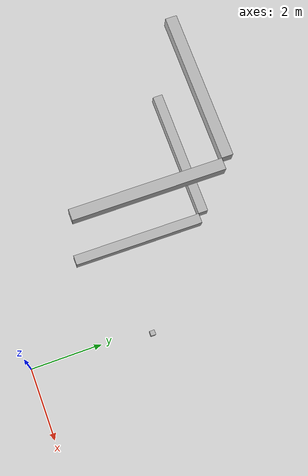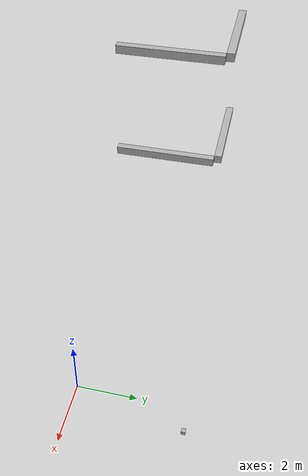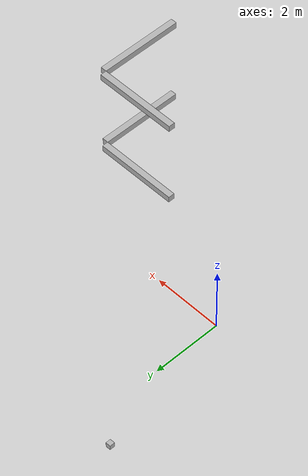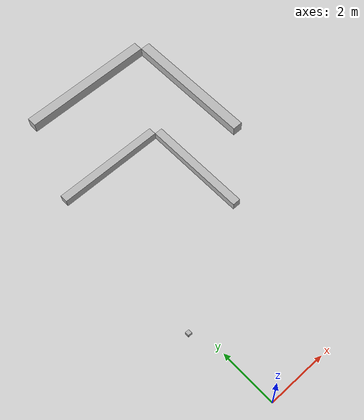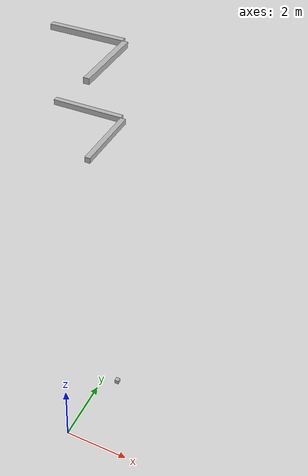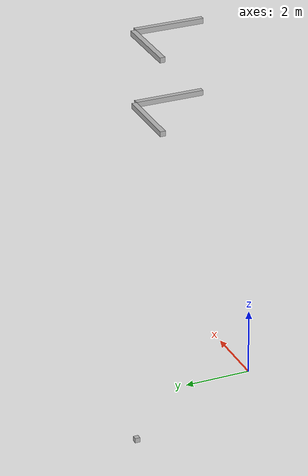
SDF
<sdf version="1.7">
 <world name="default">
  <model name="orthogonal_747_2.000.15_TS">
   <static>1</static>
   <link name="u_link_0_4_3">
    <inertial>
     <mass>1</mass>
     <inertia>
      <ixx>0.166667</ixx>
      <ixy>0</ixy>
      <ixz>0</ixz>
      <iyy>0.166667</iyy>
      <iyz>0</iyz>
      <izz>0.166667</izz>
     </inertia>
    </inertial>
    <pose>6.45 8.6 1.075 0 -0 0</pose>
    <visual name="visual_0">
     <laser_retro>694</laser_retro>
     <geometry><box><size>0.15 1e-06 0.15</size></box></geometry>
     <material>
      <script><name>Gazebo/Grey</name><uri>file://media/materials/scripts/gazebo.material</uri></script>
      <shader type="pixel"><normal_map>__default__</normal_map></shader>
      <ambient>0.678 0.498 0.659 1</ambient>
      <diffuse>0.7 0.7 0.7 1</diffuse>
      <specular>0.01 0.01 0.01 1</specular>
      <emissive>0 0 0 1</emissive>
     </material>
     <pose>0 -0.075 0 0 -0 0</pose>
     <transparency>1</transparency>
    </visual>
    <visual name="visual_1">
     <laser_retro>695</laser_retro>
     <geometry><box><size>0.15 1e-06 0.15</size></box></geometry>
     <material>
      <script><name>Gazebo/Grey</name><uri>file://media/materials/scripts/gazebo.material</uri></script>
      <shader type="pixel"><normal_map>__default__</normal_map></shader>
      <ambient>0.447 0.624 0.812 1</ambient>
      <diffuse>0.7 0.7 0.7 1</diffuse>
      <specular>0.01 0.01 0.01 1</specular>
      <emissive>0 0 0 1</emissive>
     </material>
     <pose>0 0.075 0 0 -0 0</pose>
     <transparency>1</transparency>
    </visual>
    <visual name="visual_2">
     <laser_retro>696</laser_retro>
     <geometry><box><size>0.15 0.15 1e-06</size></box></geometry>
     <material>
      <script><name>Gazebo/Grey</name><uri>file://media/materials/scripts/gazebo.material</uri></script>
      <shader type="pixel"><normal_map>__default__</normal_map></shader>
      <ambient>0.988 0.686 0.243 1</ambient>
      <diffuse>0.7 0.7 0.7 1</diffuse>
      <specular>0.01 0.01 0.01 1</specular>
      <emissive>0 0 0 1</emissive>
     </material>
     <pose>0 0 -0.075 0 -0 0</pose>
     <transparency>1</transparency>
    </visual>
    <visual name="visual_3">
     <laser_retro>697</laser_retro>
     <geometry><box><size>1e-06 0.15 0.15</size></box></geometry>
     <material>
      <script><name>Gazebo/Grey</name><uri>file://media/materials/scripts/gazebo.material</uri></script>
      <shader type="pixel"><normal_map>__default__</normal_map></shader>
      <ambient>0.988 0.914 0.31 1</ambient>
      <diffuse>0.7 0.7 0.7 1</diffuse>
      <specular>0.01 0.01 0.01 1</specular>
      <emissive>0 0 0 1</emissive>
     </material>
     <pose>0.075 0 0 0 -0 0</pose>
     <transparency>1</transparency>
    </visual>
    <visual name="visual_4">
     <laser_retro>698</laser_retro>
     <geometry><box><size>0.15 0.15 1e-06</size></box></geometry>
     <material>
      <script><name>Gazebo/Grey</name><uri>file://media/materials/scripts/gazebo.material</uri></script>
      <shader type="pixel"><normal_map>__default__</normal_map></shader>
      <ambient>0.937 0.161 0.161 1</ambient>
      <diffuse>0.7 0.7 0.7 1</diffuse>
      <specular>0.01 0.01 0.01 1</specular>
      <emissive>0 0 0 1</emissive>
     </material>
     <pose>0 0 0.075 0 -0 0</pose>
     <transparency>1</transparency>
    </visual>
    <visual name="visual_5">
     <laser_retro>699</laser_retro>
     <geometry><box><size>1e-06 0.15 0.15</size></box></geometry>
     <material>
      <script><name>Gazebo/Grey</name><uri>file://media/materials/scripts/gazebo.material</uri></script>
      <shader type="pixel"><normal_map>__default__</normal_map></shader>
      <ambient>0.541 0.886 0.204 1</ambient>
      <diffuse>0.7 0.7 0.7 1</diffuse>
      <specular>0.01 0.01 0.01 1</specular>
      <emissive>0 0 0 1</emissive>
     </material>
     <pose>-0.075 0 0 0 -0 0</pose>
     <transparency>1</transparency>
    </visual>
    <visual name="visual_texture">
     <geometry><box><size>0.149985 0.149985 0.149985</size></box></geometry>
     <material>
      <script>
       <uri>model://BASE_MODELS/simple_block_v2_textured/materials/scripts</uri>
       <uri>model://BASE_MODELS/simple_block_v2_textured/materials/textures</uri>
       <name>metal</name>
      </script>
     </material>
     <laser_retro>700</laser_retro>
    </visual>
    <collision name="collision">
     <geometry><box><size>0.15 0.15 0.15</size></box></geometry>
     <surface>
      <friction>
       <ode><mu>1</mu><mu2>1</mu2><fdir1>0 0 0</fdir1><slip1>0</slip1><slip2>0</slip2></ode>
       <torsional>
        <coefficient>1</coefficient>
        <patch_radius>0</patch_radius>
        <surface_radius>0</surface_radius>
        <use_patch_radius>1</use_patch_radius>
        <ode><slip>0</slip></ode>
       </torsional>
      </friction>
      <bounce><restitution_coefficient>0</restitution_coefficient><threshold>1e+06</threshold></bounce>
      <contact>
       <collide_without_contact>0</collide_without_contact>
       <collide_without_contact_bitmask>1</collide_without_contact_bitmask>
       <collide_bitmask>1</collide_bitmask>
       <ode>
        <soft_cfm>0</soft_cfm>
        <soft_erp>0.2</soft_erp>
        <kp>1e+13</kp>
        <kd>1</kd>
        <max_vel>0.01</max_vel>
        <min_depth>0</min_depth>
       </ode>
       <bullet>
        <split_impulse>1</split_impulse>
        <split_impulse_penetration_threshold>-0.01</split_impulse_penetration_threshold>
        <soft_cfm>0</soft_cfm>
        <soft_erp>0.2</soft_erp>
        <kp>1e+13</kp>
        <kd>1</kd>
       </bullet>
      </contact>
     </surface>
    </collision>
   </link>
   <link name="y_link_5_3_3">
    <inertial>
     <mass>1</mass>
     <inertia>
      <ixx>0.166667</ixx>
      <ixy>0</ixy>
      <ixz>0</ixz>
      <iyy>0.166667</iyy>
      <iyz>0</iyz>
      <izz>0.166667</izz>
     </inertia>
    </inertial>
    <pose>6.45 7.525 11.825 0 -0 0</pose>
    <visual name="visual_0">
     <laser_retro>5006</laser_retro>
     <geometry><box><size>0.15 1e-06 0.15</size></box></geometry>
     <material>
      <script><name>Gazebo/Grey</name><uri>file://media/materials/scripts/gazebo.material</uri></script>
      <shader type="pixel"><normal_map>__default__</normal_map></shader>
      <ambient>0.678 0.498 0.659 1</ambient>
      <diffuse>0.7 0.7 0.7 1</diffuse>
      <specular>0.01 0.01 0.01 1</specular>
      <emissive>0 0 0 1</emissive>
     </material>
     <pose>0 -1 0 0 -0 0</pose>
     <transparency>1</transparency>
    </visual>
    <visual name="visual_1">
     <laser_retro>5007</laser_retro>
     <geometry><box><size>0.15 1e-06 0.15</size></box></geometry>
     <material>
      <script><name>Gazebo/Grey</name><uri>file://media/materials/scripts/gazebo.material</uri></script>
      <shader type="pixel"><normal_map>__default__</normal_map></shader>
      <ambient>0.447 0.624 0.812 1</ambient>
      <diffuse>0.7 0.7 0.7 1</diffuse>
      <specular>0.01 0.01 0.01 1</specular>
      <emissive>0 0 0 1</emissive>
     </material>
     <pose>0 1 0 0 -0 0</pose>
     <transparency>1</transparency>
    </visual>
    <visual name="visual_2">
     <laser_retro>5008</laser_retro>
     <geometry><box><size>0.15 2 1e-06</size></box></geometry>
     <material>
      <script><name>Gazebo/Grey</name><uri>file://media/materials/scripts/gazebo.material</uri></script>
      <shader type="pixel"><normal_map>__default__</normal_map></shader>
      <ambient>0.988 0.686 0.243 1</ambient>
      <diffuse>0.7 0.7 0.7 1</diffuse>
      <specular>0.01 0.01 0.01 1</specular>
      <emissive>0 0 0 1</emissive>
     </material>
     <pose>0 0 -0.075 0 -0 0</pose>
     <transparency>1</transparency>
    </visual>
    <visual name="visual_3">
     <laser_retro>5009</laser_retro>
     <geometry><box><size>1e-06 2 0.15</size></box></geometry>
     <material>
      <script><name>Gazebo/Grey</name><uri>file://media/materials/scripts/gazebo.material</uri></script>
      <shader type="pixel"><normal_map>__default__</normal_map></shader>
      <ambient>0.988 0.914 0.31 1</ambient>
      <diffuse>0.7 0.7 0.7 1</diffuse>
      <specular>0.01 0.01 0.01 1</specular>
      <emissive>0 0 0 1</emissive>
     </material>
     <pose>0.075 0 0 0 -0 0</pose>
     <transparency>1</transparency>
    </visual>
    <visual name="visual_4">
     <laser_retro>5010</laser_retro>
     <geometry><box><size>0.15 2 1e-06</size></box></geometry>
     <material>
      <script><name>Gazebo/Grey</name><uri>file://media/materials/scripts/gazebo.material</uri></script>
      <shader type="pixel"><normal_map>__default__</normal_map></shader>
      <ambient>0.937 0.161 0.161 1</ambient>
      <diffuse>0.7 0.7 0.7 1</diffuse>
      <specular>0.01 0.01 0.01 1</specular>
      <emissive>0 0 0 1</emissive>
     </material>
     <pose>0 0 0.075 0 -0 0</pose>
     <transparency>1</transparency>
    </visual>
    <visual name="visual_5">
     <laser_retro>5011</laser_retro>
     <geometry><box><size>1e-06 2 0.15</size></box></geometry>
     <material>
      <script><name>Gazebo/Grey</name><uri>file://media/materials/scripts/gazebo.material</uri></script>
      <shader type="pixel"><normal_map>__default__</normal_map></shader>
      <ambient>0.541 0.886 0.204 1</ambient>
      <diffuse>0.7 0.7 0.7 1</diffuse>
      <specular>0.01 0.01 0.01 1</specular>
      <emissive>0 0 0 1</emissive>
     </material>
     <pose>-0.075 0 0 0 -0 0</pose>
     <transparency>1</transparency>
    </visual>
    <visual name="visual_texture">
     <geometry><box><size>0.149985 1.9998 0.149985</size></box></geometry>
     <material>
      <script>
       <uri>model://BASE_MODELS/simple_block_v2_textured/materials/scripts</uri>
       <uri>model://BASE_MODELS/simple_block_v2_textured/materials/textures</uri>
       <name>metal</name>
      </script>
     </material>
     <laser_retro>5012</laser_retro>
    </visual>
    <collision name="collision">
     <geometry><box><size>0.15 2 0.15</size></box></geometry>
     <surface>
      <friction>
       <ode><mu>1</mu><mu2>1</mu2><fdir1>0 0 0</fdir1><slip1>0</slip1><slip2>0</slip2></ode>
       <torsional>
        <coefficient>1</coefficient>
        <patch_radius>0</patch_radius>
        <surface_radius>0</surface_radius>
        <use_patch_radius>1</use_patch_radius>
        <ode><slip>0</slip></ode>
       </torsional>
      </friction>
      <bounce><restitution_coefficient>0</restitution_coefficient><threshold>1e+06</threshold></bounce>
      <contact>
       <collide_without_contact>0</collide_without_contact>
       <collide_without_contact_bitmask>1</collide_without_contact_bitmask>
       <collide_bitmask>1</collide_bitmask>
       <ode>
        <soft_cfm>0</soft_cfm>
        <soft_erp>0.2</soft_erp>
        <kp>1e+13</kp>
        <kd>1</kd>
        <max_vel>0.01</max_vel>
        <min_depth>0</min_depth>
       </ode>
       <bullet>
        <split_impulse>1</split_impulse>
        <split_impulse_penetration_threshold>-0.01</split_impulse_penetration_threshold>
        <soft_cfm>0</soft_cfm>
        <soft_erp>0.2</soft_erp>
        <kp>1e+13</kp>
        <kd>1</kd>
       </bullet>
      </contact>
     </surface>
    </collision>
   </link>
   <link name="x_link_5_4_2">
    <inertial>
     <mass>1</mass>
     <inertia>
      <ixx>0.166667</ixx>
      <ixy>0</ixy>
      <ixz>0</ixz>
      <iyy>0.166667</iyy>
      <iyz>0</iyz>
      <izz>0.166667</izz>
     </inertia>
    </inertial>
    <pose>5.375 8.6 11.825 0 -0 0</pose>
    <visual name="visual_0">
     <laser_retro>5146</laser_retro>
     <geometry><box><size>2 1e-06 0.15</size></box></geometry>
     <material>
      <script><name>Gazebo/Grey</name><uri>file://media/materials/scripts/gazebo.material</uri></script>
      <shader type="pixel"><normal_map>__default__</normal_map></shader>
      <ambient>0.678 0.498 0.659 1</ambient>
      <diffuse>0.7 0.7 0.7 1</diffuse>
      <specular>0.01 0.01 0.01 1</specular>
      <emissive>0 0 0 1</emissive>
     </material>
     <pose>0 -0.075 0 0 -0 0</pose>
     <transparency>1</transparency>
    </visual>
    <visual name="visual_1">
     <laser_retro>5147</laser_retro>
     <geometry><box><size>2 1e-06 0.15</size></box></geometry>
     <material>
      <script><name>Gazebo/Grey</name><uri>file://media/materials/scripts/gazebo.material</uri></script>
      <shader type="pixel"><normal_map>__default__</normal_map></shader>
      <ambient>0.447 0.624 0.812 1</ambient>
      <diffuse>0.7 0.7 0.7 1</diffuse>
      <specular>0.01 0.01 0.01 1</specular>
      <emissive>0 0 0 1</emissive>
     </material>
     <pose>0 0.075 0 0 -0 0</pose>
     <transparency>1</transparency>
    </visual>
    <visual name="visual_2">
     <laser_retro>5148</laser_retro>
     <geometry><box><size>2 0.15 1e-06</size></box></geometry>
     <material>
      <script><name>Gazebo/Grey</name><uri>file://media/materials/scripts/gazebo.material</uri></script>
      <shader type="pixel"><normal_map>__default__</normal_map></shader>
      <ambient>0.988 0.686 0.243 1</ambient>
      <diffuse>0.7 0.7 0.7 1</diffuse>
      <specular>0.01 0.01 0.01 1</specular>
      <emissive>0 0 0 1</emissive>
     </material>
     <pose>0 0 -0.075 0 -0 0</pose>
     <transparency>1</transparency>
    </visual>
    <visual name="visual_3">
     <laser_retro>5149</laser_retro>
     <geometry><box><size>1e-06 0.15 0.15</size></box></geometry>
     <material>
      <script><name>Gazebo/Grey</name><uri>file://media/materials/scripts/gazebo.material</uri></script>
      <shader type="pixel"><normal_map>__default__</normal_map></shader>
      <ambient>0.988 0.914 0.31 1</ambient>
      <diffuse>0.7 0.7 0.7 1</diffuse>
      <specular>0.01 0.01 0.01 1</specular>
      <emissive>0 0 0 1</emissive>
     </material>
     <pose>1 0 0 0 -0 0</pose>
     <transparency>1</transparency>
    </visual>
    <visual name="visual_4">
     <laser_retro>5150</laser_retro>
     <geometry><box><size>2 0.15 1e-06</size></box></geometry>
     <material>
      <script><name>Gazebo/Grey</name><uri>file://media/materials/scripts/gazebo.material</uri></script>
      <shader type="pixel"><normal_map>__default__</normal_map></shader>
      <ambient>0.937 0.161 0.161 1</ambient>
      <diffuse>0.7 0.7 0.7 1</diffuse>
      <specular>0.01 0.01 0.01 1</specular>
      <emissive>0 0 0 1</emissive>
     </material>
     <pose>0 0 0.075 0 -0 0</pose>
     <transparency>1</transparency>
    </visual>
    <visual name="visual_5">
     <laser_retro>5151</laser_retro>
     <geometry><box><size>1e-06 0.15 0.15</size></box></geometry>
     <material>
      <script><name>Gazebo/Grey</name><uri>file://media/materials/scripts/gazebo.material</uri></script>
      <shader type="pixel"><normal_map>__default__</normal_map></shader>
      <ambient>0.541 0.886 0.204 1</ambient>
      <diffuse>0.7 0.7 0.7 1</diffuse>
      <specular>0.01 0.01 0.01 1</specular>
      <emissive>0 0 0 1</emissive>
     </material>
     <pose>-1 0 0 0 -0 0</pose>
     <transparency>1</transparency>
    </visual>
    <visual name="visual_texture">
     <geometry><box><size>1.9998 0.149985 0.149985</size></box></geometry>
     <material>
      <script>
       <uri>model://BASE_MODELS/simple_block_v2_textured/materials/scripts</uri>
       <uri>model://BASE_MODELS/simple_block_v2_textured/materials/textures</uri>
       <name>metal</name>
      </script>
     </material>
     <laser_retro>5152</laser_retro>
    </visual>
    <collision name="collision">
     <geometry><box><size>2 0.15 0.15</size></box></geometry>
     <surface>
      <friction>
       <ode><mu>1</mu><mu2>1</mu2><fdir1>0 0 0</fdir1><slip1>0</slip1><slip2>0</slip2></ode>
       <torsional>
        <coefficient>1</coefficient>
        <patch_radius>0</patch_radius>
        <surface_radius>0</surface_radius>
        <use_patch_radius>1</use_patch_radius>
        <ode><slip>0</slip></ode>
       </torsional>
      </friction>
      <bounce><restitution_coefficient>0</restitution_coefficient><threshold>1e+06</threshold></bounce>
      <contact>
       <collide_without_contact>0</collide_without_contact>
       <collide_without_contact_bitmask>1</collide_without_contact_bitmask>
       <collide_bitmask>1</collide_bitmask>
       <ode>
        <soft_cfm>0</soft_cfm>
        <soft_erp>0.2</soft_erp>
        <kp>1e+13</kp>
        <kd>1</kd>
        <max_vel>0.01</max_vel>
        <min_depth>0</min_depth>
       </ode>
       <bullet>
        <split_impulse>1</split_impulse>
        <split_impulse_penetration_threshold>-0.01</split_impulse_penetration_threshold>
        <soft_cfm>0</soft_cfm>
        <soft_erp>0.2</soft_erp>
        <kp>1e+13</kp>
        <kd>1</kd>
       </bullet>
      </contact>
     </surface>
    </collision>
   </link>
   <link name="y_link_6_3_3">
    <inertial>
     <mass>1</mass>
     <inertia>
      <ixx>0.166667</ixx>
      <ixy>0</ixy>
      <ixz>0</ixz>
      <iyy>0.166667</iyy>
      <iyz>0</iyz>
      <izz>0.166667</izz>
     </inertia>
    </inertial>
    <pose>6.45 7.525 13.975 0 -0 0</pose>
    <visual name="visual_0">
     <laser_retro>6007</laser_retro>
     <geometry><box><size>0.15 1e-06 0.15</size></box></geometry>
     <material>
      <script><name>Gazebo/Grey</name><uri>file://media/materials/scripts/gazebo.material</uri></script>
      <shader type="pixel"><normal_map>__default__</normal_map></shader>
      <ambient>0.678 0.498 0.659 1</ambient>
      <diffuse>0.7 0.7 0.7 1</diffuse>
      <specular>0.01 0.01 0.01 1</specular>
      <emissive>0 0 0 1</emissive>
     </material>
     <pose>0 -1 0 0 -0 0</pose>
     <transparency>1</transparency>
    </visual>
    <visual name="visual_1">
     <laser_retro>6008</laser_retro>
     <geometry><box><size>0.15 1e-06 0.15</size></box></geometry>
     <material>
      <script><name>Gazebo/Grey</name><uri>file://media/materials/scripts/gazebo.material</uri></script>
      <shader type="pixel"><normal_map>__default__</normal_map></shader>
      <ambient>0.447 0.624 0.812 1</ambient>
      <diffuse>0.7 0.7 0.7 1</diffuse>
      <specular>0.01 0.01 0.01 1</specular>
      <emissive>0 0 0 1</emissive>
     </material>
     <pose>0 1 0 0 -0 0</pose>
     <transparency>1</transparency>
    </visual>
    <visual name="visual_2">
     <laser_retro>6009</laser_retro>
     <geometry><box><size>0.15 2 1e-06</size></box></geometry>
     <material>
      <script><name>Gazebo/Grey</name><uri>file://media/materials/scripts/gazebo.material</uri></script>
      <shader type="pixel"><normal_map>__default__</normal_map></shader>
      <ambient>0.988 0.686 0.243 1</ambient>
      <diffuse>0.7 0.7 0.7 1</diffuse>
      <specular>0.01 0.01 0.01 1</specular>
      <emissive>0 0 0 1</emissive>
     </material>
     <pose>0 0 -0.075 0 -0 0</pose>
     <transparency>1</transparency>
    </visual>
    <visual name="visual_3">
     <laser_retro>6010</laser_retro>
     <geometry><box><size>1e-06 2 0.15</size></box></geometry>
     <material>
      <script><name>Gazebo/Grey</name><uri>file://media/materials/scripts/gazebo.material</uri></script>
      <shader type="pixel"><normal_map>__default__</normal_map></shader>
      <ambient>0.988 0.914 0.31 1</ambient>
      <diffuse>0.7 0.7 0.7 1</diffuse>
      <specular>0.01 0.01 0.01 1</specular>
      <emissive>0 0 0 1</emissive>
     </material>
     <pose>0.075 0 0 0 -0 0</pose>
     <transparency>1</transparency>
    </visual>
    <visual name="visual_4">
     <laser_retro>6011</laser_retro>
     <geometry><box><size>0.15 2 1e-06</size></box></geometry>
     <material>
      <script><name>Gazebo/Grey</name><uri>file://media/materials/scripts/gazebo.material</uri></script>
      <shader type="pixel"><normal_map>__default__</normal_map></shader>
      <ambient>0.937 0.161 0.161 1</ambient>
      <diffuse>0.7 0.7 0.7 1</diffuse>
      <specular>0.01 0.01 0.01 1</specular>
      <emissive>0 0 0 1</emissive>
     </material>
     <pose>0 0 0.075 0 -0 0</pose>
     <transparency>1</transparency>
    </visual>
    <visual name="visual_5">
     <laser_retro>6012</laser_retro>
     <geometry><box><size>1e-06 2 0.15</size></box></geometry>
     <material>
      <script><name>Gazebo/Grey</name><uri>file://media/materials/scripts/gazebo.material</uri></script>
      <shader type="pixel"><normal_map>__default__</normal_map></shader>
      <ambient>0.541 0.886 0.204 1</ambient>
      <diffuse>0.7 0.7 0.7 1</diffuse>
      <specular>0.01 0.01 0.01 1</specular>
      <emissive>0 0 0 1</emissive>
     </material>
     <pose>-0.075 0 0 0 -0 0</pose>
     <transparency>1</transparency>
    </visual>
    <visual name="visual_texture">
     <geometry><box><size>0.149985 1.9998 0.149985</size></box></geometry>
     <material>
      <script>
       <uri>model://BASE_MODELS/simple_block_v2_textured/materials/scripts</uri>
       <uri>model://BASE_MODELS/simple_block_v2_textured/materials/textures</uri>
       <name>metal</name>
      </script>
     </material>
     <laser_retro>6013</laser_retro>
    </visual>
    <collision name="collision">
     <geometry><box><size>0.15 2 0.15</size></box></geometry>
     <surface>
      <friction>
       <ode><mu>1</mu><mu2>1</mu2><fdir1>0 0 0</fdir1><slip1>0</slip1><slip2>0</slip2></ode>
       <torsional>
        <coefficient>1</coefficient>
        <patch_radius>0</patch_radius>
        <surface_radius>0</surface_radius>
        <use_patch_radius>1</use_patch_radius>
        <ode><slip>0</slip></ode>
       </torsional>
      </friction>
      <bounce><restitution_coefficient>0</restitution_coefficient><threshold>1e+06</threshold></bounce>
      <contact>
       <collide_without_contact>0</collide_without_contact>
       <collide_without_contact_bitmask>1</collide_without_contact_bitmask>
       <collide_bitmask>1</collide_bitmask>
       <ode>
        <soft_cfm>0</soft_cfm>
        <soft_erp>0.2</soft_erp>
        <kp>1e+13</kp>
        <kd>1</kd>
        <max_vel>0.01</max_vel>
        <min_depth>0</min_depth>
       </ode>
       <bullet>
        <split_impulse>1</split_impulse>
        <split_impulse_penetration_threshold>-0.01</split_impulse_penetration_threshold>
        <soft_cfm>0</soft_cfm>
        <soft_erp>0.2</soft_erp>
        <kp>1e+13</kp>
        <kd>1</kd>
       </bullet>
      </contact>
     </surface>
    </collision>
   </link>
   <link name="x_link_6_4_2">
    <inertial>
     <mass>1</mass>
     <inertia>
      <ixx>0.166667</ixx>
      <ixy>0</ixy>
      <ixz>0</ixz>
      <iyy>0.166667</iyy>
      <iyz>0</iyz>
      <izz>0.166667</izz>
     </inertia>
    </inertial>
    <pose>5.375 8.6 13.975 0 -0 0</pose>
    <visual name="visual_0">
     <laser_retro>6175</laser_retro>
     <geometry><box><size>2 1e-06 0.15</size></box></geometry>
     <material>
      <script><name>Gazebo/Grey</name><uri>file://media/materials/scripts/gazebo.material</uri></script>
      <shader type="pixel"><normal_map>__default__</normal_map></shader>
      <ambient>0.678 0.498 0.659 1</ambient>
      <diffuse>0.7 0.7 0.7 1</diffuse>
      <specular>0.01 0.01 0.01 1</specular>
      <emissive>0 0 0 1</emissive>
     </material>
     <pose>0 -0.075 0 0 -0 0</pose>
     <transparency>1</transparency>
    </visual>
    <visual name="visual_1">
     <laser_retro>6176</laser_retro>
     <geometry><box><size>2 1e-06 0.15</size></box></geometry>
     <material>
      <script><name>Gazebo/Grey</name><uri>file://media/materials/scripts/gazebo.material</uri></script>
      <shader type="pixel"><normal_map>__default__</normal_map></shader>
      <ambient>0.447 0.624 0.812 1</ambient>
      <diffuse>0.7 0.7 0.7 1</diffuse>
      <specular>0.01 0.01 0.01 1</specular>
      <emissive>0 0 0 1</emissive>
     </material>
     <pose>0 0.075 0 0 -0 0</pose>
     <transparency>1</transparency>
    </visual>
    <visual name="visual_2">
     <laser_retro>6177</laser_retro>
     <geometry><box><size>2 0.15 1e-06</size></box></geometry>
     <material>
      <script><name>Gazebo/Grey</name><uri>file://media/materials/scripts/gazebo.material</uri></script>
      <shader type="pixel"><normal_map>__default__</normal_map></shader>
      <ambient>0.988 0.686 0.243 1</ambient>
      <diffuse>0.7 0.7 0.7 1</diffuse>
      <specular>0.01 0.01 0.01 1</specular>
      <emissive>0 0 0 1</emissive>
     </material>
     <pose>0 0 -0.075 0 -0 0</pose>
     <transparency>1</transparency>
    </visual>
    <visual name="visual_3">
     <laser_retro>6178</laser_retro>
     <geometry><box><size>1e-06 0.15 0.15</size></box></geometry>
     <material>
      <script><name>Gazebo/Grey</name><uri>file://media/materials/scripts/gazebo.material</uri></script>
      <shader type="pixel"><normal_map>__default__</normal_map></shader>
      <ambient>0.988 0.914 0.31 1</ambient>
      <diffuse>0.7 0.7 0.7 1</diffuse>
      <specular>0.01 0.01 0.01 1</specular>
      <emissive>0 0 0 1</emissive>
     </material>
     <pose>1 0 0 0 -0 0</pose>
     <transparency>1</transparency>
    </visual>
    <visual name="visual_4">
     <laser_retro>6179</laser_retro>
     <geometry><box><size>2 0.15 1e-06</size></box></geometry>
     <material>
      <script><name>Gazebo/Grey</name><uri>file://media/materials/scripts/gazebo.material</uri></script>
      <shader type="pixel"><normal_map>__default__</normal_map></shader>
      <ambient>0.937 0.161 0.161 1</ambient>
      <diffuse>0.7 0.7 0.7 1</diffuse>
      <specular>0.01 0.01 0.01 1</specular>
      <emissive>0 0 0 1</emissive>
     </material>
     <pose>0 0 0.075 0 -0 0</pose>
     <transparency>1</transparency>
    </visual>
    <visual name="visual_5">
     <laser_retro>6180</laser_retro>
     <geometry><box><size>1e-06 0.15 0.15</size></box></geometry>
     <material>
      <script><name>Gazebo/Grey</name><uri>file://media/materials/scripts/gazebo.material</uri></script>
      <shader type="pixel"><normal_map>__default__</normal_map></shader>
      <ambient>0.541 0.886 0.204 1</ambient>
      <diffuse>0.7 0.7 0.7 1</diffuse>
      <specular>0.01 0.01 0.01 1</specular>
      <emissive>0 0 0 1</emissive>
     </material>
     <pose>-1 0 0 0 -0 0</pose>
     <transparency>1</transparency>
    </visual>
    <visual name="visual_texture">
     <geometry><box><size>1.9998 0.149985 0.149985</size></box></geometry>
     <material>
      <script>
       <uri>model://BASE_MODELS/simple_block_v2_textured/materials/scripts</uri>
       <uri>model://BASE_MODELS/simple_block_v2_textured/materials/textures</uri>
       <name>metal</name>
      </script>
     </material>
     <laser_retro>6181</laser_retro>
    </visual>
    <collision name="collision">
     <geometry><box><size>2 0.15 0.15</size></box></geometry>
     <surface>
      <friction>
       <ode><mu>1</mu><mu2>1</mu2><fdir1>0 0 0</fdir1><slip1>0</slip1><slip2>0</slip2></ode>
       <torsional>
        <coefficient>1</coefficient>
        <patch_radius>0</patch_radius>
        <surface_radius>0</surface_radius>
        <use_patch_radius>1</use_patch_radius>
        <ode><slip>0</slip></ode>
       </torsional>
      </friction>
      <bounce><restitution_coefficient>0</restitution_coefficient><threshold>1e+06</threshold></bounce>
      <contact>
       <collide_without_contact>0</collide_without_contact>
       <collide_without_contact_bitmask>1</collide_without_contact_bitmask>
       <collide_bitmask>1</collide_bitmask>
       <ode>
        <soft_cfm>0</soft_cfm>
        <soft_erp>0.2</soft_erp>
        <kp>1e+13</kp>
        <kd>1</kd>
        <max_vel>0.01</max_vel>
        <min_depth>0</min_depth>
       </ode>
       <bullet>
        <split_impulse>1</split_impulse>
        <split_impulse_penetration_threshold>-0.01</split_impulse_penetration_threshold>
        <soft_cfm>0</soft_cfm>
        <soft_erp>0.2</soft_erp>
        <kp>1e+13</kp>
        <kd>1</kd>
       </bullet>
      </contact>
     </surface>
    </collision>
   </link>
   <pose>-6.47624 -5 -2.5 0 -0 0</pose>
  </model>
 </world>
</sdf>
